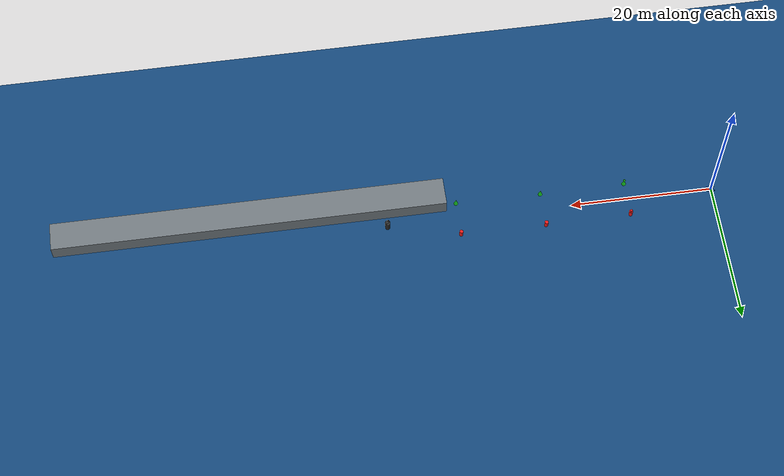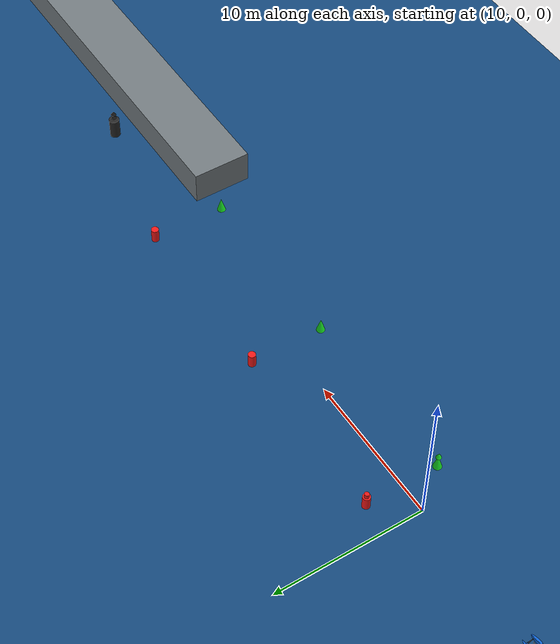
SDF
<?xml version="1.0" ?>
<sdf version="1.9">
  <world name="practice_world">
    <physics name="1ms" type="ignored">
      <max_step_size>0.002</max_step_size>
      <real_time_factor>1.0</real_time_factor>
    </physics>

    <!-- Simulation Plugins -->
    <plugin filename="gz-sim-physics-system" name="gz::sim::systems::Physics"/>
    <plugin filename="gz-sim-user-commands-system" name="gz::sim::systems::UserCommands"/>
    <plugin filename="gz-sim-scene-broadcaster-system" name="gz::sim::systems::SceneBroadcaster"/>
    <plugin filename="gz-sim-contact-system" name="gz::sim::systems::Contact"/>
    <plugin filename="gz-sim-sensors-system" name="gz::sim::systems::Sensors">
      <render_engine>ogre2</render_engine>
    </plugin>
    <plugin filename="gz-sim-imu-system" name="gz::sim::systems::Imu"/>
    <plugin filename="gz-sim-navsat-system" name="gz::sim::systems::NavSat"/>

    <plugin filename="gz-sim-buoyancy-system" name="gz::sim::systems::Buoyancy">
      <uniform_fluid_density>1000.0</uniform_fluid_density>
    </plugin>

    <!-- Lighting & Water -->
    <light type="directional" name="sun">
      <cast_shadows>true</cast_shadows>
      <pose>0 0 50 0 0 0</pose>
      <diffuse>0.9 0.9 0.9 1</diffuse>
      <specular>0.3 0.3 0.3 1</specular>
      <direction>-0.5 0.2 -1.0</direction>
    </light>

    <model name="water_plane">
      <static>true</static>
      <link name="link">
        <visual name="visual">
          <geometry><plane><normal>0 0 1</normal><size>250 250</size></plane></geometry>
          <material>
            <ambient>0.04 0.18 0.32 0.85</ambient>
            <diffuse>0.08 0.28 0.48 0.85</diffuse>
            <specular>0.7 0.8 0.9 1.0</specular>
          </material>
        </visual>
      </link>
    </model>

    <!-- BlueBoat USV Model -->
    <include>
      <uri>model://blueboat</uri>
      <name>blueboat</name>
      <pose>0 0 0.05 0 0 0</pose>
    </include>

    <!-- Gate 1 -->
    <model name="gate_port_1">
      <static>true</static>
      <pose>12.0 2.5 0.4 0 0 0</pose>
      <link name="link">
        <visual name="body"><geometry><cylinder><radius>0.25</radius><length>1.0</length></cylinder></geometry><material><ambient>0.8 0.05 0.05 1</ambient><diffuse>0.95 0.1 0.1 1</diffuse></material></visual>
        <visual name="topmark"><pose>0 0 0.65 0 0 0</pose><geometry><cylinder><radius>0.15</radius><length>0.3</length></cylinder></geometry><material><ambient>0.7 0.05 0.05 1</ambient><diffuse>0.9 0.1 0.1 1</diffuse></material></visual>
      </link>
    </model>

    <model name="gate_starboard_1">
      <static>true</static>
      <pose>12.0 -2.5 0.4 0 0 0</pose>
      <link name="link">
        <visual name="body"><geometry><cone><radius>0.3</radius><length>1.0</length></cone></geometry><material><ambient>0.05 0.75 0.1 1</ambient><diffuse>0.1 0.9 0.15 1</diffuse></material></visual>
        <visual name="topmark"><pose>0 0 0.65 0 0 0</pose><geometry><cone><radius>0.18</radius><length>0.35</length></cone></geometry><material><ambient>0.05 0.7 0.1 1</ambient><diffuse>0.1 0.85 0.15 1</diffuse></material></visual>
      </link>
    </model>

    <!-- Gate 2 -->
    <model name="gate_port_2">
      <static>true</static>
      <pose>24.0 2.6 0.4 0 0 0</pose>
      <link name="link">
        <visual name="body"><geometry><cylinder><radius>0.25</radius><length>1.0</length></cylinder></geometry><material><ambient>0.8 0.05 0.05 1</ambient><diffuse>0.95 0.1 0.1 1</diffuse></material></visual>
      </link>
    </model>

    <model name="gate_starboard_2">
      <static>true</static>
      <pose>24.0 -2.4 0.4 0 0 0</pose>
      <link name="link">
        <visual name="body"><geometry><cone><radius>0.3</radius><length>1.0</length></cone></geometry><material><ambient>0.05 0.75 0.1 1</ambient><diffuse>0.1 0.9 0.15 1</diffuse></material></visual>
      </link>
    </model>

    <!-- Gate 3 -->
    <model name="gate_port_3">
      <static>true</static>
      <pose>36.0 2.5 0.4 0 0 0</pose>
      <link name="link">
        <visual name="body"><geometry><cylinder><radius>0.25</radius><length>1.0</length></cylinder></geometry><material><ambient>0.8 0.05 0.05 1</ambient><diffuse>0.95 0.1 0.1 1</diffuse></material></visual>
      </link>
    </model>

    <model name="gate_starboard_3">
      <static>true</static>
      <pose>36.0 -2.5 0.4 0 0 0</pose>
      <link name="link">
        <visual name="body"><geometry><cone><radius>0.3</radius><length>1.0</length></cone></geometry><material><ambient>0.05 0.75 0.1 1</ambient><diffuse>0.1 0.9 0.15 1</diffuse></material></visual>
      </link>
    </model>

    <!-- North Cardinal Buoy -->
    <model name="cardinal_north">
      <static>true</static>
      <pose>46.0 0.0 0.6 0 0 0</pose>
      <link name="link">
        <visual name="body"><geometry><cylinder><radius>0.35</radius><length>1.5</length></cylinder></geometry><material><ambient>0.1 0.1 0.1 1</ambient><diffuse>0.15 0.15 0.15 1</diffuse></material></visual>
        <visual name="cone_lower"><pose>0 0 1.0 0 0 0</pose><geometry><cone><radius>0.18</radius><length>0.25</length></cone></geometry><material><ambient>0.1 0.1 0.1 1</ambient><diffuse>0.1 0.1 0.1 1</diffuse></material></visual>
        <visual name="cone_upper"><pose>0 0 1.3 0 0 0</pose><geometry><cone><radius>0.18</radius><length>0.25</length></cone></geometry><material><ambient>0.1 0.1 0.1 1</ambient><diffuse>0.1 0.1 0.1 1</diffuse></material></visual>
      </link>
    </model>

    <!-- Pier / Wall -->
    <model name="pier_wall">
      <static>true</static>
      <pose>65.0 -3.5 1.0 0 0 0</pose>
      <link name="pier_link">
        <collision name="pier_collision"><geometry><box><size>55.0 4.0 2.5</size></box></geometry></collision>
        <visual name="pier_visual"><geometry><box><size>55.0 4.0 2.5</size></box></geometry><material><ambient>0.3 0.32 0.35 1</ambient><diffuse>0.45 0.48 0.5 1</diffuse></material></visual>
      </link>
    </model>

  </world>
</sdf>

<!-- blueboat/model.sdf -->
<sdf version="1.9">
  <model name="blueboat">
    <static>false</static>

    <!-- Base Link (Catamaran Hull & Electronics Deck) -->
    <link name="base_link">
      <pose>0 0 0 0 0 0</pose>
      <inertial>
        <pose>0.0 0.0 0.05 0 0 0</pose>
        <mass>14.5</mass>
        <inertia>
          <ixx>0.85</ixx><ixy>0.0</ixy><ixz>0.0</ixz>
          <iyy>1.45</iyy><iyz>0.0</iyz><izz>1.95</izz>
        </inertia>
      </inertial>

      <!-- Realistic 3D Blue Robotics BlueBoat Visual Meshes -->
      <visual name="blueboat_hulls_visual">
        <pose>0 0 0 0 0 0</pose>
        <geometry>
          <mesh>
            <uri>model://blueboat/meshes/blueboat_hulls.obj</uri>
          </mesh>
        </geometry>
        <material>
          <ambient>0.04 0.25 0.65 1.0</ambient>
          <diffuse>0.06 0.40 0.85 1.0</diffuse>
          <specular>0.6 0.6 0.6 1.0</specular>
          <pbr>
            <metal>
              <albedo_color>0.06 0.40 0.85 1.0</albedo_color>
              <roughness>0.25</roughness>
              <metalness>0.1</metalness>
            </metal>
          </pbr>
        </material>
      </visual>

      <visual name="blueboat_frame_visual">
        <pose>0 0 0 0 0 0</pose>
        <geometry>
          <mesh>
            <uri>model://blueboat/meshes/blueboat_frame.obj</uri>
          </mesh>
        </geometry>
        <material>
          <ambient>0.1 0.1 0.1 1.0</ambient>
          <diffuse>0.15 0.15 0.15 1.0</diffuse>
          <specular>0.3 0.3 0.3 1.0</specular>
          <pbr>
            <metal>
              <albedo_color>0.15 0.15 0.15 1.0</albedo_color>
              <roughness>0.5</roughness>
              <metalness>0.8</metalness>
            </metal>
          </pbr>
        </material>
      </visual>

      <visual name="blueboat_antenna_visual">
        <pose>0 0 0 0 0 0</pose>
        <geometry>
          <mesh>
            <uri>model://blueboat/meshes/blueboat_antenna.obj</uri>
          </mesh>
        </geometry>
        <material>
          <ambient>0.8 0.8 0.8 1.0</ambient>
          <diffuse>0.92 0.92 0.95 1.0</diffuse>
          <specular>0.5 0.5 0.5 1.0</specular>
          <pbr>
            <metal>
              <albedo_color>0.92 0.92 0.95 1.0</albedo_color>
              <roughness>0.3</roughness>
              <metalness>0.1</metalness>
            </metal>
          </pbr>
        </material>
      </visual>

      <!-- Port (Left) Pontoon Hull Collision -->
      <collision name="left_hull_collision">
        <pose>0 0.30 0 0 1.57079632679 0</pose>
        <geometry><capsule><radius>0.13</radius><length>1.05</length></capsule></geometry>
      </collision>

      <!-- Starboard (Right) Pontoon Hull Collision -->
      <collision name="right_hull_collision">
        <pose>0 -0.30 0 0 1.57079632679 0</pose>
        <geometry><capsule><radius>0.13</radius><length>1.05</length></capsule></geometry>
      </collision>

      <!-- 1. IMU Sensor (50 Hz) -->
      <sensor name="imu_sensor" type="imu">
        <always_on>true</always_on>
        <update_rate>50</update_rate>
        <topic>/blueboat/imu</topic>
        <imu>
          <angular_velocity>
            <x><noise type="gaussian"><mean>0.0</mean><stddev>0.005</stddev></noise></x>
            <y><noise type="gaussian"><mean>0.0</mean><stddev>0.005</stddev></noise></y>
            <z><noise type="gaussian"><mean>0.0</mean><stddev>0.003</stddev></noise></z>
          </angular_velocity>
          <linear_acceleration>
            <x><noise type="gaussian"><mean>0.0</mean><stddev>0.02</stddev></noise></x>
            <y><noise type="gaussian"><mean>0.0</mean><stddev>0.02</stddev></noise></y>
            <z><noise type="gaussian"><mean>0.0</mean><stddev>0.02</stddev></noise></z>
          </linear_acceleration>
        </imu>
      </sensor>

      <!-- 2. NavSat GPS Sensor (5 Hz) -->
      <sensor name="navsat_sensor" type="navsat">
        <always_on>true</always_on>
        <update_rate>5</update_rate>
        <topic>/blueboat/gps</topic>
        <navsat>
          <position_sensing>
            <horizontal><noise type="gaussian"><mean>0.0</mean><stddev>0.3</stddev></noise></horizontal>
            <vertical><noise type="gaussian"><mean>0.0</mean><stddev>0.5</stddev></noise></vertical>
          </position_sensing>
        </navsat>
      </sensor>

      <!-- 3. Contact Collision Sensor -->
      <sensor name="contact_sensor" type="contact">
        <always_on>true</always_on>
        <update_rate>50</update_rate>
        <topic>/blueboat/contacts</topic>
        <contact>
          <collision>left_hull_collision</collision>
          <collision>right_hull_collision</collision>
        </contact>
      </sensor>

      <!-- 4. Ping2 Port-Side Echosounder (GPU LiDAR at +90 deg / port) -->
      <sensor name="ping2_port" type="gpu_lidar">
        <pose>0.1 0.30 0.05 0 0 1.57079632679</pose>
        <always_on>true</always_on>
        <update_rate>10</update_rate>
        <visualize>true</visualize>
        <topic>/blueboat/ping2_port</topic>
        <lidar>
          <scan>
            <horizontal><samples>1</samples><resolution>1</resolution><min_angle>0.0</min_angle><max_angle>0.0</max_angle></horizontal>
          </scan>
          <range><min>0.5</min><max>30.0</max><resolution>0.01</resolution></range>
          <noise><type>gaussian</type><mean>0.0</mean><stddev>0.02</stddev></noise>
        </lidar>
      </sensor>
    </link>

    <!-- Left Thruster (Blue Robotics T200) -->
    <link name="left_propeller_link">
      <pose>-0.55 0.30 -0.06 0 0 0</pose>
      <inertial>
        <mass>0.15</mass>
        <inertia><ixx>0.0002</ixx><ixy>0.0</ixy><ixz>0.0</ixz><iyy>0.0001</iyy><iyz>0.0</iyz><izz>0.0001</izz></inertia>
      </inertial>
      <visual name="left_propeller_visual">
        <pose>0 0 0 0 1.57079632679 0</pose>
        <geometry><cylinder><radius>0.05</radius><length>0.04</length></cylinder></geometry>
        <material><ambient>0.08 0.15 0.25 1.0</ambient><diffuse>0.1 0.2 0.35 1.0</diffuse><specular>0.5 0.5 0.5 1.0</specular></material>
      </visual>
      <collision name="left_propeller_collision">
        <pose>0 0 0 0 1.57079632679 0</pose>
        <geometry><cylinder><radius>0.05</radius><length>0.04</length></cylinder></geometry>
      </collision>
    </link>

    <joint name="left_propeller_joint" type="revolute">
      <parent>base_link</parent>
      <child>left_propeller_link</child>
      <axis><xyz>1 0 0</xyz><limit><lower>-1e16</lower><upper>1e16</upper></limit></axis>
    </joint>

    <!-- Right Thruster (Blue Robotics T200) -->
    <link name="right_propeller_link">
      <pose>-0.55 -0.30 -0.06 0 0 0</pose>
      <inertial>
        <mass>0.15</mass>
        <inertia><ixx>0.0002</ixx><ixy>0.0</ixy><ixz>0.0</ixz><iyy>0.0001</iyy><iyz>0.0</iyz><izz>0.0001</izz></inertia>
      </inertial>
      <visual name="right_propeller_visual">
        <pose>0 0 0 0 1.57079632679 0</pose>
        <geometry><cylinder><radius>0.05</radius><length>0.04</length></cylinder></geometry>
        <material><ambient>0.08 0.15 0.25 1.0</ambient><diffuse>0.1 0.2 0.35 1.0</diffuse><specular>0.5 0.5 0.5 1.0</specular></material>
      </visual>
      <collision name="right_propeller_collision">
        <pose>0 0 0 0 1.57079632679 0</pose>
        <geometry><cylinder><radius>0.05</radius><length>0.04</length></cylinder></geometry>
      </collision>
    </link>

    <joint name="right_propeller_joint" type="revolute">
      <parent>base_link</parent>
      <child>right_propeller_link</child>
      <axis><xyz>1 0 0</xyz><limit><lower>-1e16</lower><upper>1e16</upper></limit></axis>
    </joint>

    <!-- Fossen Hydrodynamics Plugin -->
    <plugin
      filename="gz-sim-hydrodynamics-system"
      name="gz::sim::systems::Hydrodynamics">
      <link_name>base_link</link_name>
      <xDotU>-3.5</xDotU><yDotV>-12.0</yDotV><zDotW>-15.0</zDotW>
      <kDotP>-0.5</kDotP><mDotQ>-1.2</mDotQ><nDotR>-2.8</nDotR>
      <xU>-15.0</xU><yV>-35.0</yV><zW>-40.0</zW>
      <kP>-4.0</kP><mQ>-6.0</mQ><nR>-12.0</nR>
      <xUabsU>-22.0</xUabsU><yVabsV>-48.0</yVabsV><zWabsW>-60.0</zWabsW>
      <kPabsP>-5.0</kPabsP><mQabsQ>-8.0</mQabsQ><nRabsR>-18.0</nRabsR>
    </plugin>

    <!-- Thruster Plugins -->
    <plugin
      filename="gz-sim-thruster-system"
      name="gz::sim::systems::Thruster">
      <namespace>blueboat</namespace>
      <joint_name>left_propeller_joint</joint_name>
      <thrust_coefficient>0.0035</thrust_coefficient>
      <fluid_density>1000</fluid_density>
      <propeller_diameter>0.10</propeller_diameter>
      <velocity_control>false</velocity_control>
      <use_angvel_cmd>false</use_angvel_cmd>
      <sub_topic>cmd_thrust_left</sub_topic>
    </plugin>

    <plugin
      filename="gz-sim-thruster-system"
      name="gz::sim::systems::Thruster">
      <namespace>blueboat</namespace>
      <joint_name>right_propeller_joint</joint_name>
      <thrust_coefficient>0.0035</thrust_coefficient>
      <fluid_density>1000</fluid_density>
      <propeller_diameter>0.10</propeller_diameter>
      <velocity_control>false</velocity_control>
      <use_angvel_cmd>false</use_angvel_cmd>
      <sub_topic>cmd_thrust_right</sub_topic>
    </plugin>

  </model>
</sdf>
